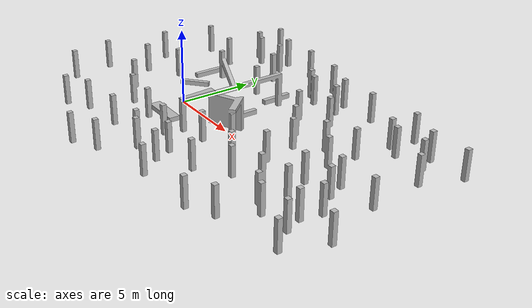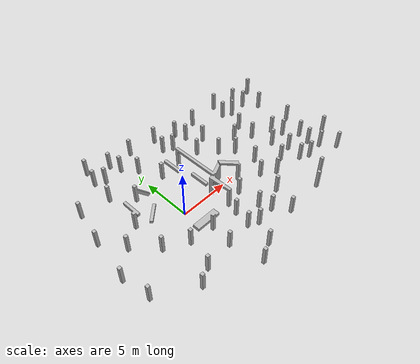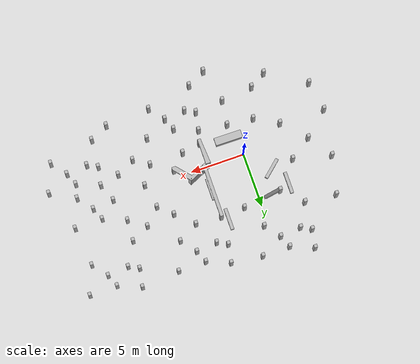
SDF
<?xml version="1.0" ?>
<sdf version='1.4'>
  <world name='world'>
    <model name='ground_plane'>
      <static>1</static>
      <link name='link'>
        <collision name='collision'>
          <geometry>
            <plane>
              <normal>0 0 1</normal>
              <size>100 100</size>
            </plane>
          </geometry>
          <surface>
            <friction>
              <ode>
                <mu>100</mu>
                <mu2>50</mu2>
              </ode>
            </friction>
            <bounce/>
            <contact>
              <ode/>
            </contact>
          </surface>
          <max_contacts>10</max_contacts>
        </collision>
        <velocity_decay>
          <linear>0</linear>
          <angular>0</angular>
        </velocity_decay>
        <self_collide>0</self_collide>
        <kinematic>0</kinematic>
        <gravity>1</gravity>
      </link>
    </model>
    <model name='pillars'>
      <static>1</static>
      <link name='body'>
        <visual name='visual'>
          <pose>0 0 -0.001 0 -0 0</pose>
          <geometry>
            <mesh>
              <uri>model://pillars/pillars3.dae</uri>
            </mesh>
          </geometry>
        </visual>
        <collision name='pillars'>
          <pose>0 0 -0.001 0 -0 0</pose>
          <geometry>
            <mesh>
              <uri>model://pillars/pillars3.dae</uri>
            </mesh>
          </geometry>
          <max_contacts>10</max_contacts>
          <surface>
            <bounce/>
            <friction>
              <ode/>
            </friction>
            <contact>
              <ode/>
            </contact>
          </surface>
        </collision>
        <velocity_decay>
          <linear>0</linear>
          <angular>0</angular>
        </velocity_decay>
        <self_collide>0</self_collide>
        <kinematic>0</kinematic>
        <gravity>1</gravity>
      </link>
    </model>
    <gui fullscreen='0'>
      <camera name='user_camera'>
        <pose>20.7846 -10.4135 44.9584 0 1.2978 1.56583</pose>
        <view_controller>orbit</view_controller>
      </camera>
    </gui>
   <physics type='ode'>
      <max_step_size>0.001</max_step_size>
      <real_time_factor>1</real_time_factor>
      <real_time_update_rate>1000</real_time_update_rate>
      <gravity>0 0 -9.8</gravity>
    </physics>
    <scene>
      <ambient>0.4 0.4 0.4 1</ambient>
      <background>0.7 0.7 0.7 1</background>
      <shadows>1</shadows>
    </scene>
    <spherical_coordinates>
      <surface_model>EARTH_WGS84</surface_model>
      <latitude_deg>0</latitude_deg>
      <longitude_deg>0</longitude_deg>
      <elevation>0</elevation>
      <heading_deg>0</heading_deg>
    </spherical_coordinates>
 </world>
</sdf>
